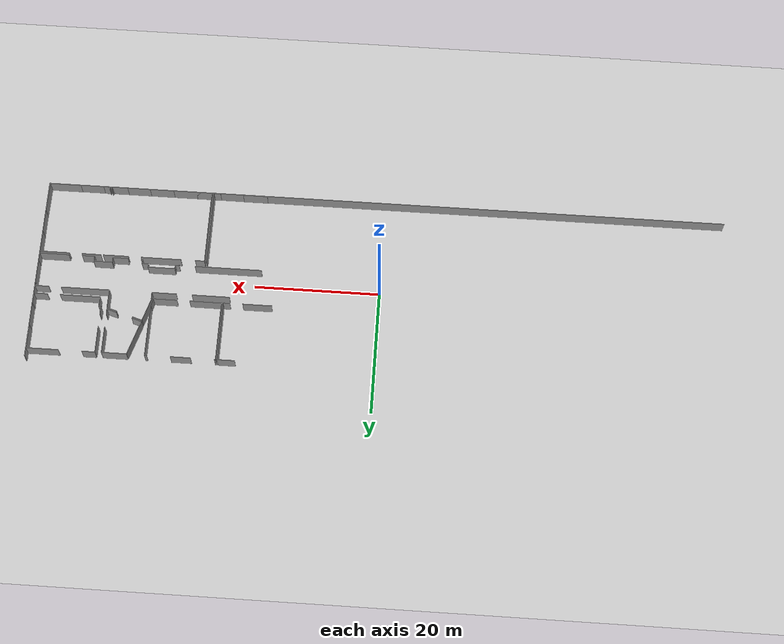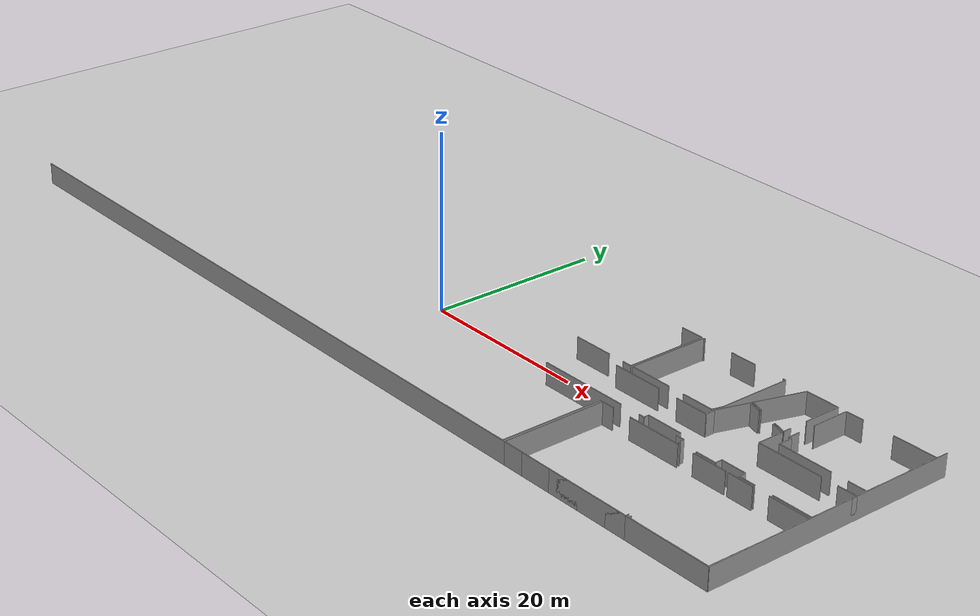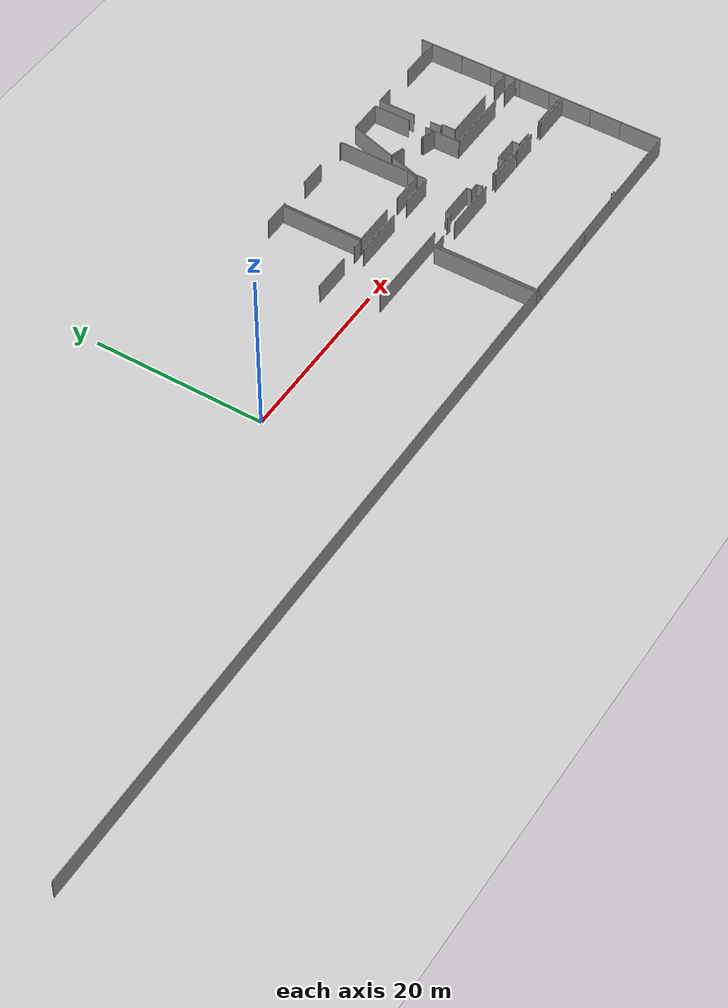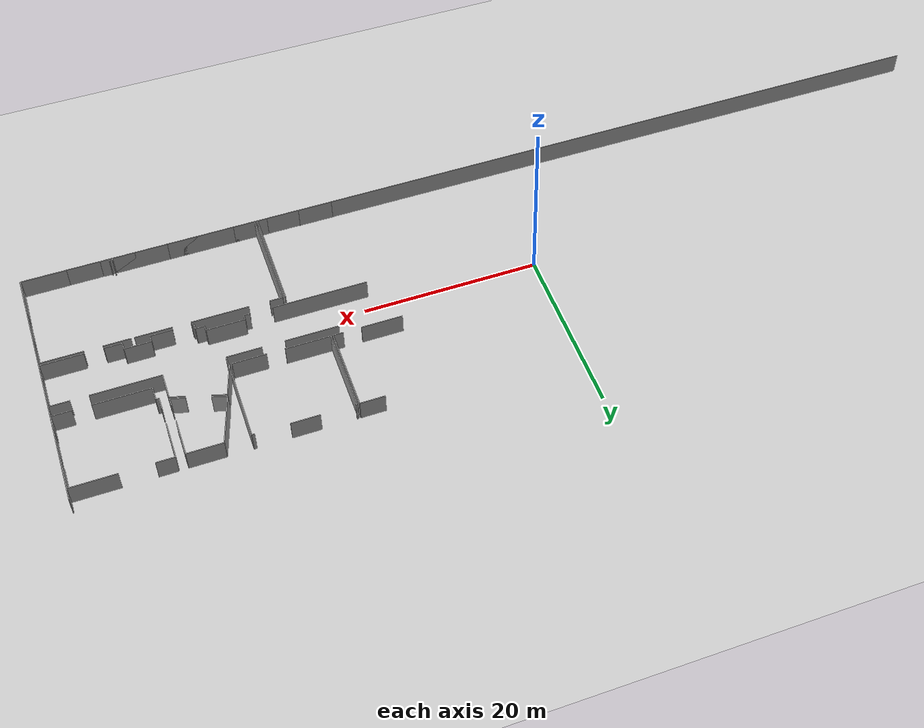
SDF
<sdf version="1.6">
 <world name="default">
  <model name="ground_plane">
   <static>1</static>
   <link name="link">
    <collision name="collision">
     <geometry><plane><normal>0 0 1</normal><size>100 100</size></plane></geometry>
     <surface><friction><ode><mu>100</mu><mu2>50</mu2></ode></friction></surface>
    </collision>
    <visual name="visual">
     <cast_shadows>0</cast_shadows>
     <geometry><plane><normal>0 0 1</normal><size>100 100</size></plane></geometry>
     <material>
      <script><uri>file://media/materials/scripts/gazebo.material</uri><name>Gazebo/Grey</name></script>
     </material>
    </visual>
   </link>
  </model>
  <model name="50056458">
   <static>1</static>
   <link name="Wall_161">
    <collision name="Wall_161_Collision">
     <geometry><box><size>4.71122328847 0.1 2.5</size></box></geometry>
     <pose>2.35561164424 0 1.25 0 0 0</pose>
    </collision>
    <visual name="Wall_161_Visual">
     <pose>2.35561164424 0 1.25 0 0 0</pose>
     <geometry><box><size>4.71122328847 0.1 2.5</size></box></geometry>
     <material>
      <script><uri>file://media/materials/scripts/gazebo.material</uri><name>Gazebo/Grey</name></script>
      <ambient>1 1 1 1</ambient>
     </material>
    </visual>
    <pose>109.543733643 -17.6653933783 0 0 0 3.14159265359</pose>
   </link>
   <link name="Wall_162">
    <collision name="Wall_162_Collision">
     <geometry><box><size>1.97379454039 0.1 2.5</size></box></geometry>
     <pose>0.986897270194 0 1.25 0 0 0</pose>
    </collision>
    <visual name="Wall_162_Visual">
     <pose>0.986897270194 0 1.25 0 0 0</pose>
     <geometry><box><size>1.97379454039 0.1 2.5</size></box></geometry>
     <material>
      <script><uri>file://media/materials/scripts/gazebo.material</uri><name>Gazebo/Grey</name></script>
      <ambient>1 1 1 1</ambient>
     </material>
    </visual>
    <pose>102.680511913 -17.6653933783 0 0 0 3.14159265359</pose>
   </link>
   <link name="Wall_163">
    <collision name="Wall_163_Collision">
     <geometry><box><size>0.839692716847 0.1 2.5</size></box></geometry>
     <pose>0.419846358424 0 1.25 0 0 0</pose>
    </collision>
    <visual name="Wall_163_Visual">
     <pose>0.419846358424 0 1.25 0 0 0</pose>
     <geometry><box><size>0.839692716847 0.1 2.5</size></box></geometry>
     <material>
      <script><uri>file://media/materials/scripts/gazebo.material</uri><name>Gazebo/Grey</name></script>
      <ambient>1 1 1 1</ambient>
     </material>
    </visual>
    <pose>100.706717372 -17.6653933783 0 0 0 1.57079632679</pose>
   </link>
   <link name="Wall_164">
    <collision name="Wall_164_Collision">
     <geometry><box><size>2.96136939196 0.1 2.5</size></box></geometry>
     <pose>1.48068469598 0 1.25 0 0 0</pose>
    </collision>
    <visual name="Wall_164_Visual">
     <pose>1.48068469598 0 1.25 0 0 0</pose>
     <geometry><box><size>2.96136939196 0.1 2.5</size></box></geometry>
     <material>
      <script><uri>file://media/materials/scripts/gazebo.material</uri><name>Gazebo/Grey</name></script>
      <ambient>1 1 1 1</ambient>
     </material>
    </visual>
    <pose>100.706717372 -16.8257006615 0 0 0 3.14159265359</pose>
   </link>
   <link name="Wall_165">
    <collision name="Wall_165_Collision">
     <geometry><box><size>0.806830020243 0.1 2.5</size></box></geometry>
     <pose>0.403415010121 0 1.25 0 0 0</pose>
    </collision>
    <visual name="Wall_165_Visual">
     <pose>0.403415010121 0 1.25 0 0 0</pose>
     <geometry><box><size>0.806830020243 0.1 2.5</size></box></geometry>
     <material>
      <script><uri>file://media/materials/scripts/gazebo.material</uri><name>Gazebo/Grey</name></script>
      <ambient>1 1 1 1</ambient>
     </material>
    </visual>
    <pose>97.7453479804 -16.8257006615 0 0 0 -1.57079632679</pose>
   </link>
   <link name="Wall_166">
    <collision name="Wall_166_Collision">
     <geometry><box><size>2.45928159435 0.1 2.5</size></box></geometry>
     <pose>1.22964079717 0 1.25 0 0 0</pose>
    </collision>
    <visual name="Wall_166_Visual">
     <pose>1.22964079717 0 1.25 0 0 0</pose>
     <geometry><box><size>2.45928159435 0.1 2.5</size></box></geometry>
     <material>
      <script><uri>file://media/materials/scripts/gazebo.material</uri><name>Gazebo/Grey</name></script>
      <ambient>1 1 1 1</ambient>
     </material>
    </visual>
    <pose>97.7453479804 -17.6325306817 0 0 0 3.14159265359</pose>
   </link>
   <link name="Wall_167">
    <collision name="Wall_167_Collision">
     <geometry><box><size>0.220891527692 0.1 2.5</size></box></geometry>
     <pose>0.110445763846 0 1.25 0 0 0</pose>
    </collision>
    <visual name="Wall_167_Visual">
     <pose>0.110445763846 0 1.25 0 0 0</pose>
     <geometry><box><size>0.220891527692 0.1 2.5</size></box></geometry>
     <material>
      <script><uri>file://media/materials/scripts/gazebo.material</uri><name>Gazebo/Grey</name></script>
      <ambient>1 1 1 1</ambient>
     </material>
    </visual>
    <pose>93.1796352918 -17.6325306817 0 0 0 3.14159265359</pose>
   </link>
   <link name="Wall_168">
    <collision name="Wall_168_Collision">
     <geometry><box><size>0.680122303438 0.1 2.5</size></box></geometry>
     <pose>0.340061151719 0 1.25 0 0 0</pose>
    </collision>
    <visual name="Wall_168_Visual">
     <pose>0.340061151719 0 1.25 0 0 0</pose>
     <geometry><box><size>0.680122303438 0.1 2.5</size></box></geometry>
     <material>
      <script><uri>file://media/materials/scripts/gazebo.material</uri><name>Gazebo/Grey</name></script>
      <ambient>1 1 1 1</ambient>
     </material>
    </visual>
    <pose>92.9587437641 -17.6325306817 0 0 0 1.57079632679</pose>
   </link>
   <link name="Wall_169">
    <collision name="Wall_169_Collision">
     <geometry><box><size>1.02416424572 0.1 2.5</size></box></geometry>
     <pose>0.512082122862 0 1.25 0 0 0</pose>
    </collision>
    <visual name="Wall_169_Visual">
     <pose>0.512082122862 0 1.25 0 0 0</pose>
     <geometry><box><size>1.02416424572 0.1 2.5</size></box></geometry>
     <material>
      <script><uri>file://media/materials/scripts/gazebo.material</uri><name>Gazebo/Grey</name></script>
      <ambient>1 1 1 1</ambient>
     </material>
    </visual>
    <pose>92.9587437641 -16.9524083783 0 0 0 3.14159265359</pose>
   </link>
   <link name="Wall_170">
    <collision name="Wall_170_Collision">
     <geometry><box><size>0.590173376134 0.1 2.5</size></box></geometry>
     <pose>0.295086688067 0 1.25 0 0 0</pose>
    </collision>
    <visual name="Wall_170_Visual">
     <pose>0.295086688067 0 1.25 0 0 0</pose>
     <geometry><box><size>0.590173376134 0.1 2.5</size></box></geometry>
     <material>
      <script><uri>file://media/materials/scripts/gazebo.material</uri><name>Gazebo/Grey</name></script>
      <ambient>1 1 1 1</ambient>
     </material>
    </visual>
    <pose>91.9345795184 -16.9524083783 0 0 0 1.57079632679</pose>
   </link>
   <link name="Wall_171">
    <collision name="Wall_171_Collision">
     <geometry><box><size>4.29925381351 0.1 2.5</size></box></geometry>
     <pose>2.14962690676 0 1.25 0 0 0</pose>
    </collision>
    <visual name="Wall_171_Visual">
     <pose>2.14962690676 0 1.25 0 0 0</pose>
     <geometry><box><size>4.29925381351 0.1 2.5</size></box></geometry>
     <material>
      <script><uri>file://media/materials/scripts/gazebo.material</uri><name>Gazebo/Grey</name></script>
      <ambient>1 1 1 1</ambient>
     </material>
    </visual>
    <pose>91.9345795184 -16.3622350022 0 0 0 3.14159265359</pose>
   </link>
   <link name="Wall_172">
    <collision name="Wall_172_Collision">
     <geometry><box><size>0.601522864136 0.1 2.5</size></box></geometry>
     <pose>0.300761432068 0 1.25 0 0 0</pose>
    </collision>
    <visual name="Wall_172_Visual">
     <pose>0.300761432068 0 1.25 0 0 0</pose>
     <geometry><box><size>0.601522864136 0.1 2.5</size></box></geometry>
     <material>
      <script><uri>file://media/materials/scripts/gazebo.material</uri><name>Gazebo/Grey</name></script>
      <ambient>1 1 1 1</ambient>
     </material>
    </visual>
    <pose>87.6353257049 -16.3622350022 0 0 0 -1.57079632679</pose>
   </link>
   <link name="Wall_173">
    <collision name="Wall_173_Collision">
     <geometry><box><size>0.668264629405 0.1 2.5</size></box></geometry>
     <pose>0.334132314703 0 1.25 0 0 0</pose>
    </collision>
    <visual name="Wall_173_Visual">
     <pose>0.334132314703 0 1.25 0 0 0</pose>
     <geometry><box><size>0.668264629405 0.1 2.5</size></box></geometry>
     <material>
      <script><uri>file://media/materials/scripts/gazebo.material</uri><name>Gazebo/Grey</name></script>
      <ambient>1 1 1 1</ambient>
     </material>
    </visual>
    <pose>87.6353257049 -16.9637578663 0 0 0 3.14159265359</pose>
   </link>
   <link name="Wall_174">
    <collision name="Wall_174_Collision">
     <geometry><box><size>10.6702126759 0.1 2.5</size></box></geometry>
     <pose>5.33510633793 0 1.25 0 0 0</pose>
    </collision>
    <visual name="Wall_174_Visual">
     <pose>5.33510633793 0 1.25 0 0 0</pose>
     <geometry><box><size>10.6702126759 0.1 2.5</size></box></geometry>
     <material>
      <script><uri>file://media/materials/scripts/gazebo.material</uri><name>Gazebo/Grey</name></script>
      <ambient>1 1 1 1</ambient>
     </material>
    </visual>
    <pose>84.4386661811 -16.9637578663 0 0 0 3.14159265359</pose>
   </link>
   <link name="Wall_183">
    <collision name="Wall_183_Collision">
     <geometry><box><size>5.98118017736 0.1 2.5</size></box></geometry>
     <pose>2.99059008868 0 1.25 0 0 0</pose>
    </collision>
    <visual name="Wall_183_Visual">
     <pose>2.99059008868 0 1.25 0 0 0</pose>
     <geometry><box><size>5.98118017736 0.1 2.5</size></box></geometry>
     <material>
      <script><uri>file://media/materials/scripts/gazebo.material</uri><name>Gazebo/Grey</name></script>
      <ambient>1 1 1 1</ambient>
     </material>
    </visual>
    <pose>78.4241151211 -12.0162280739 0 0 0 0.0</pose>
   </link>
   <link name="Wall_184">
    <collision name="Wall_184_Collision">
     <geometry><box><size>3.90337689617 0.1 2.5</size></box></geometry>
     <pose>1.95168844808 0 1.25 0 0 0</pose>
    </collision>
    <visual name="Wall_184_Visual">
     <pose>1.95168844808 0 1.25 0 0 0</pose>
     <geometry><box><size>3.90337689617 0.1 2.5</size></box></geometry>
     <material>
      <script><uri>file://media/materials/scripts/gazebo.material</uri><name>Gazebo/Grey</name></script>
      <ambient>1 1 1 1</ambient>
     </material>
    </visual>
    <pose>86.9047235891 -12.0162280739 0 0 0 0.0</pose>
   </link>
   <link name="Wall_185">
    <collision name="Wall_185_Collision">
     <geometry><box><size>1.05889029111 0.1 2.5</size></box></geometry>
     <pose>0.529445145553 0 1.25 0 0 0</pose>
    </collision>
    <visual name="Wall_185_Visual">
     <pose>0.529445145553 0 1.25 0 0 0</pose>
     <geometry><box><size>1.05889029111 0.1 2.5</size></box></geometry>
     <material>
      <script><uri>file://media/materials/scripts/gazebo.material</uri><name>Gazebo/Grey</name></script>
      <ambient>1 1 1 1</ambient>
     </material>
    </visual>
    <pose>90.8081004853 -12.0162280739 0 0 0 1.57079632679</pose>
   </link>
   <link name="Wall_186">
    <collision name="Wall_186_Collision">
     <geometry><box><size>0.0987574851567 0.1 2.5</size></box></geometry>
     <pose>0.0493787425784 0 1.25 0 0 0</pose>
    </collision>
    <visual name="Wall_186_Visual">
     <pose>0.0493787425784 0 1.25 0 0 0</pose>
     <geometry><box><size>0.0987574851567 0.1 2.5</size></box></geometry>
     <material>
      <script><uri>file://media/materials/scripts/gazebo.material</uri><name>Gazebo/Grey</name></script>
      <ambient>1 1 1 1</ambient>
     </material>
    </visual>
    <pose>90.8081004853 -10.9573377828 0 0 0 3.14159265359</pose>
   </link>
   <link name="Wall_187">
    <collision name="Wall_187_Collision">
     <geometry><box><size>3.95452072079 0.1 2.5</size></box></geometry>
     <pose>1.97726036039 0 1.25 0 0 0</pose>
    </collision>
    <visual name="Wall_187_Visual">
     <pose>1.97726036039 0 1.25 0 0 0</pose>
     <geometry><box><size>3.95452072079 0.1 2.5</size></box></geometry>
     <material>
      <script><uri>file://media/materials/scripts/gazebo.material</uri><name>Gazebo/Grey</name></script>
      <ambient>1 1 1 1</ambient>
     </material>
    </visual>
    <pose>90.7093430002 -10.9573377828 0 0 0 1.27352564434</pose>
   </link>
   <link name="Wall_188">
    <collision name="Wall_188_Collision">
     <geometry><box><size>1.63315909425 0.1 2.5</size></box></geometry>
     <pose>0.816579547124 0 1.25 0 0 0</pose>
    </collision>
    <visual name="Wall_188_Visual">
     <pose>0.816579547124 0 1.25 0 0 0</pose>
     <geometry><box><size>1.63315909425 0.1 2.5</size></box></geometry>
     <material>
      <script><uri>file://media/materials/scripts/gazebo.material</uri><name>Gazebo/Grey</name></script>
      <ambient>1 1 1 1</ambient>
     </material>
    </visual>
    <pose>91.8676683578 -7.17626432449 0 0 0 -0.300527403711</pose>
   </link>
   <link name="Wall_189">
    <collision name="Wall_189_Collision">
     <geometry><box><size>1.69234562505 0.1 2.5</size></box></geometry>
     <pose>0.846172812523 0 1.25 0 0 0</pose>
    </collision>
    <visual name="Wall_189_Visual">
     <pose>0.846172812523 0 1.25 0 0 0</pose>
     <geometry><box><size>1.69234562505 0.1 2.5</size></box></geometry>
     <material>
      <script><uri>file://media/materials/scripts/gazebo.material</uri><name>Gazebo/Grey</name></script>
      <ambient>1 1 1 1</ambient>
     </material>
    </visual>
    <pose>95.998035014 -8.45519916657 0 0 0 -0.278340906324</pose>
   </link>
   <link name="Wall_190">
    <collision name="Wall_190_Collision">
     <geometry><box><size>3.06486994673 0.1 2.5</size></box></geometry>
     <pose>1.53243497336 0 1.25 0 0 0</pose>
    </collision>
    <visual name="Wall_190_Visual">
     <pose>1.53243497336 0 1.25 0 0 0</pose>
     <geometry><box><size>3.06486994673 0.1 2.5</size></box></geometry>
     <material>
      <script><uri>file://media/materials/scripts/gazebo.material</uri><name>Gazebo/Grey</name></script>
      <ambient>1 1 1 1</ambient>
     </material>
    </visual>
    <pose>97.625246682 -8.92018938399 0 0 0 -1.57079632679</pose>
   </link>
   <link name="Wall_191">
    <collision name="Wall_191_Collision">
     <geometry><box><size>7.71951519053 0.1 2.5</size></box></geometry>
     <pose>3.85975759526 0 1.25 0 0 0</pose>
    </collision>
    <visual name="Wall_191_Visual">
     <pose>3.85975759526 0 1.25 0 0 0</pose>
     <geometry><box><size>7.71951519053 0.1 2.5</size></box></geometry>
     <material>
      <script><uri>file://media/materials/scripts/gazebo.material</uri><name>Gazebo/Grey</name></script>
      <ambient>1 1 1 1</ambient>
     </material>
    </visual>
    <pose>97.625246682 -11.9850593307 0 0 0 0.0</pose>
   </link>
   <link name="Wall_192">
    <collision name="Wall_192_Collision">
     <geometry><box><size>2.2538050429 0.1 2.5</size></box></geometry>
     <pose>1.12690252145 0 1.25 0 0 0</pose>
    </collision>
    <visual name="Wall_192_Visual">
     <pose>1.12690252145 0 1.25 0 0 0</pose>
     <geometry><box><size>2.2538050429 0.1 2.5</size></box></geometry>
     <material>
      <script><uri>file://media/materials/scripts/gazebo.material</uri><name>Gazebo/Grey</name></script>
      <ambient>1 1 1 1</ambient>
     </material>
    </visual>
    <pose>107.305682367 -11.9850593307 0 0 0 0.0</pose>
   </link>
   <link name="Wall_193">
    <collision name="Wall_193_Collision">
     <geometry><box><size>0.651494490416 0.1 2.5</size></box></geometry>
     <pose>0.325747245208 0 1.25 0 0 0</pose>
    </collision>
    <visual name="Wall_193_Visual">
     <pose>0.325747245208 0 1.25 0 0 0</pose>
     <geometry><box><size>0.651494490416 0.1 2.5</size></box></geometry>
     <material>
      <script><uri>file://media/materials/scripts/gazebo.material</uri><name>Gazebo/Grey</name></script>
      <ambient>1 1 1 1</ambient>
     </material>
    </visual>
    <pose>109.55948741 -11.9850593307 0 0 0 -1.57079632679</pose>
   </link>
   <link name="Wall_194">
    <collision name="Wall_194_Collision">
     <geometry><box><size>1.30223729791 0.1 2.5</size></box></geometry>
     <pose>0.651118648953 0 1.25 0 0 0</pose>
    </collision>
    <visual name="Wall_194_Visual">
     <pose>0.651118648953 0 1.25 0 0 0</pose>
     <geometry><box><size>1.30223729791 0.1 2.5</size></box></geometry>
     <material>
      <script><uri>file://media/materials/scripts/gazebo.material</uri><name>Gazebo/Grey</name></script>
      <ambient>1 1 1 1</ambient>
     </material>
    </visual>
    <pose>109.55948741 -16.3632513742 0 0 0 -1.58289408443</pose>
   </link>
   <link name="Wall_235">
    <collision name="Wall_235_Collision">
     <geometry><box><size>1.12021140539 0.1 2.5</size></box></geometry>
     <pose>0.560105702694 0 1.25 0 0 0</pose>
    </collision>
    <visual name="Wall_235_Visual">
     <pose>0.560105702694 0 1.25 0 0 0</pose>
     <geometry><box><size>1.12021140539 0.1 2.5</size></box></geometry>
     <material>
      <script><uri>file://media/materials/scripts/gazebo.material</uri><name>Gazebo/Grey</name></script>
      <ambient>1 1 1 1</ambient>
     </material>
    </visual>
    <pose>79.3735760204 -10.9935883863 0 0 0 3.14159265359</pose>
   </link>
   <link name="Wall_236">
    <collision name="Wall_236_Collision">
     <geometry><box><size>4.63330143054 0.1 2.5</size></box></geometry>
     <pose>2.31665071527 0 1.25 0 0 0</pose>
    </collision>
    <visual name="Wall_236_Visual">
     <pose>2.31665071527 0 1.25 0 0 0</pose>
     <geometry><box><size>4.63330143054 0.1 2.5</size></box></geometry>
     <material>
      <script><uri>file://media/materials/scripts/gazebo.material</uri><name>Gazebo/Grey</name></script>
      <ambient>1 1 1 1</ambient>
     </material>
    </visual>
    <pose>76.229937239 -10.9935883863 0 0 0 3.14159265359</pose>
   </link>
   <link name="Wall_239">
    <collision name="Wall_239_Collision">
     <geometry><box><size>2.78452065353 0.1 2.5</size></box></geometry>
     <pose>1.39226032676 0 1.25 0 0 0</pose>
    </collision>
    <visual name="Wall_239_Visual">
     <pose>1.39226032676 0 1.25 0 0 0</pose>
     <geometry><box><size>2.78452065353 0.1 2.5</size></box></geometry>
     <material>
      <script><uri>file://media/materials/scripts/gazebo.material</uri><name>Gazebo/Grey</name></script>
      <ambient>1 1 1 1</ambient>
     </material>
    </visual>
    <pose>76.5863450414 -1.38158842013 0 0 0 0.0</pose>
   </link>
   <link name="Wall_240">
    <collision name="Wall_240_Collision">
     <geometry><box><size>9.61200034824 0.1 2.5</size></box></geometry>
     <pose>4.80600017412 0 1.25 0 0 0</pose>
    </collision>
    <visual name="Wall_240_Visual">
     <pose>4.80600017412 0 1.25 0 0 0</pose>
     <geometry><box><size>9.61200034824 0.1 2.5</size></box></geometry>
     <material>
      <script><uri>file://media/materials/scripts/gazebo.material</uri><name>Gazebo/Grey</name></script>
      <ambient>1 1 1 1</ambient>
     </material>
    </visual>
    <pose>79.3708656949 -1.38158842013 0 0 0 -1.5705143537</pose>
   </link>
   <link name="Wall_241">
    <collision name="Wall_241_Collision">
     <geometry><box><size>3.80665215513 0.1 2.5</size></box></geometry>
     <pose>1.90332607757 0 1.25 0 0 0</pose>
    </collision>
    <visual name="Wall_241_Visual">
     <pose>1.90332607757 0 1.25 0 0 0</pose>
     <geometry><box><size>3.80665215513 0.1 2.5</size></box></geometry>
     <material>
      <script><uri>file://media/materials/scripts/gazebo.material</uri><name>Gazebo/Grey</name></script>
      <ambient>1 1 1 1</ambient>
     </material>
    </visual>
    <pose>90.4840471935 -10.9720751777 0 0 0 3.14159265359</pose>
   </link>
   <link name="Wall_242">
    <collision name="Wall_242_Collision">
     <geometry><box><size>5.06712290479 0.1 2.5</size></box></geometry>
     <pose>2.5335614524 0 1.25 0 0 0</pose>
    </collision>
    <visual name="Wall_242_Visual">
     <pose>2.5335614524 0 1.25 0 0 0</pose>
     <geometry><box><size>5.06712290479 0.1 2.5</size></box></geometry>
     <material>
      <script><uri>file://media/materials/scripts/gazebo.material</uri><name>Gazebo/Grey</name></script>
      <ambient>1 1 1 1</ambient>
     </material>
    </visual>
    <pose>84.680393336 -10.9720751777 0 0 0 3.14159265359</pose>
   </link>
   <link name="Wall_243">
    <collision name="Wall_243_Collision">
     <geometry><box><size>9.6009892688 0.1 2.5</size></box></geometry>
     <pose>4.8004946344 0 1.25 0 0 0</pose>
    </collision>
    <visual name="Wall_243_Visual">
     <pose>4.8004946344 0 1.25 0 0 0</pose>
     <geometry><box><size>9.6009892688 0.1 2.5</size></box></geometry>
     <material>
      <script><uri>file://media/materials/scripts/gazebo.material</uri><name>Gazebo/Grey</name></script>
      <ambient>1 1 1 1</ambient>
     </material>
    </visual>
    <pose>79.6132704312 -10.9720751777 0 0 0 1.57079632679</pose>
   </link>
   <link name="Wall_244">
    <collision name="Wall_244_Collision">
     <geometry><box><size>0.191586133297 0.1 2.5</size></box></geometry>
     <pose>0.0957930666486 0 1.25 0 0 0</pose>
    </collision>
    <visual name="Wall_244_Visual">
     <pose>0.0957930666486 0 1.25 0 0 0</pose>
     <geometry><box><size>0.191586133297 0.1 2.5</size></box></geometry>
     <material>
      <script><uri>file://media/materials/scripts/gazebo.material</uri><name>Gazebo/Grey</name></script>
      <ambient>1 1 1 1</ambient>
     </material>
    </visual>
    <pose>79.6132704312 -1.37108590885 0 0 0 0.0</pose>
   </link>
   <link name="Wall_245">
    <collision name="Wall_245_Collision">
     <geometry><box><size>3.20089440741 0.1 2.5</size></box></geometry>
     <pose>1.60044720371 0 1.25 0 0 0</pose>
    </collision>
    <visual name="Wall_245_Visual">
     <pose>1.60044720371 0 1.25 0 0 0</pose>
     <geometry><box><size>3.20089440741 0.1 2.5</size></box></geometry>
     <material>
      <script><uri>file://media/materials/scripts/gazebo.material</uri><name>Gazebo/Grey</name></script>
      <ambient>1 1 1 1</ambient>
     </material>
    </visual>
    <pose>83.5476466752 -1.37108590885 0 0 0 0.0</pose>
   </link>
   <link name="Wall_246">
    <collision name="Wall_246_Collision">
     <geometry><box><size>0.322189942998 0.1 2.5</size></box></geometry>
     <pose>0.161094971499 0 1.25 0 0 0</pose>
    </collision>
    <visual name="Wall_246_Visual">
     <pose>0.161094971499 0 1.25 0 0 0</pose>
     <geometry><box><size>0.322189942998 0.1 2.5</size></box></geometry>
     <material>
      <script><uri>file://media/materials/scripts/gazebo.material</uri><name>Gazebo/Grey</name></script>
      <ambient>1 1 1 1</ambient>
     </material>
    </visual>
    <pose>90.468971008 -1.37108590885 0 0 0 0.0</pose>
   </link>
   <link name="Wall_247">
    <collision name="Wall_247_Collision">
     <geometry><box><size>8.34898828631 0.1 2.5</size></box></geometry>
     <pose>4.17449414316 0 1.25 0 0 0</pose>
    </collision>
    <visual name="Wall_247_Visual">
     <pose>4.17449414316 0 1.25 0 0 0</pose>
     <geometry><box><size>8.34898828631 0.1 2.5</size></box></geometry>
     <material>
      <script><uri>file://media/materials/scripts/gazebo.material</uri><name>Gazebo/Grey</name></script>
      <ambient>1 1 1 1</ambient>
     </material>
    </visual>
    <pose>90.791160951 -1.37108590885 0 0 0 -1.57079632679</pose>
   </link>
   <link name="Wall_248">
    <collision name="Wall_248_Collision">
     <geometry><box><size>1.28911803966 0.1 2.5</size></box></geometry>
     <pose>0.644559019829 0 1.25 0 0 0</pose>
    </collision>
    <visual name="Wall_248_Visual">
     <pose>0.644559019829 0 1.25 0 0 0</pose>
     <geometry><box><size>1.28911803966 0.1 2.5</size></box></geometry>
     <material>
      <script><uri>file://media/materials/scripts/gazebo.material</uri><name>Gazebo/Grey</name></script>
      <ambient>1 1 1 1</ambient>
     </material>
    </visual>
    <pose>90.791160951 -9.72007419516 0 0 0 -1.81134502241</pose>
   </link>
   <link name="Wall_249">
    <collision name="Wall_249_Collision">
     <geometry><box><size>0.935570481167 0.1 2.5</size></box></geometry>
     <pose>0.467785240584 0 1.25 0 0 0</pose>
    </collision>
    <visual name="Wall_249_Visual">
     <pose>0.467785240584 0 1.25 0 0 0</pose>
     <geometry><box><size>0.935570481167 0.1 2.5</size></box></geometry>
     <material>
      <script><uri>file://media/materials/scripts/gazebo.material</uri><name>Gazebo/Grey</name></script>
      <ambient>1 1 1 1</ambient>
     </material>
    </visual>
    <pose>97.6039028687 -8.73266873894 0 0 0 1.57079632679</pose>
   </link>
   <link name="Wall_250">
    <collision name="Wall_250_Collision">
     <geometry><box><size>4.32127520814 0.1 2.5</size></box></geometry>
     <pose>2.16063760407 0 1.25 0 0 0</pose>
    </collision>
    <visual name="Wall_250_Visual">
     <pose>2.16063760407 0 1.25 0 0 0</pose>
     <geometry><box><size>4.32127520814 0.1 2.5</size></box></geometry>
     <material>
      <script><uri>file://media/materials/scripts/gazebo.material</uri><name>Gazebo/Grey</name></script>
      <ambient>1 1 1 1</ambient>
     </material>
    </visual>
    <pose>97.6039028687 -5.70472697706 0 0 0 1.57079632679</pose>
   </link>
   <link name="Wall_251">
    <collision name="Wall_251_Collision">
     <geometry><box><size>3.97011866144 0.1 2.5</size></box></geometry>
     <pose>1.98505933072 0 1.25 0 0 0</pose>
    </collision>
    <visual name="Wall_251_Visual">
     <pose>1.98505933072 0 1.25 0 0 0</pose>
     <geometry><box><size>3.97011866144 0.1 2.5</size></box></geometry>
     <material>
      <script><uri>file://media/materials/scripts/gazebo.material</uri><name>Gazebo/Grey</name></script>
      <ambient>1 1 1 1</ambient>
     </material>
    </visual>
    <pose>97.6039028687 -1.38345176891 0 0 0 3.14159265359</pose>
   </link>
   <link name="Wall_252">
    <collision name="Wall_252_Collision">
     <geometry><box><size>5.86161062156 0.1 2.5</size></box></geometry>
     <pose>2.93080531078 0 1.25 0 0 0</pose>
    </collision>
    <visual name="Wall_252_Visual">
     <pose>2.93080531078 0 1.25 0 0 0</pose>
     <geometry><box><size>5.86161062156 0.1 2.5</size></box></geometry>
     <material>
      <script><uri>file://media/materials/scripts/gazebo.material</uri><name>Gazebo/Grey</name></script>
      <ambient>1 1 1 1</ambient>
     </material>
    </visual>
    <pose>93.6337842073 -1.38345176891 0 0 0 -1.87085904189</pose>
   </link>
   <link name="Wall_253">
    <collision name="Wall_253_Collision">
     <geometry><box><size>1.66984837027 0.1 2.5</size></box></geometry>
     <pose>0.834924185135 0 1.25 0 0 0</pose>
    </collision>
    <visual name="Wall_253_Visual">
     <pose>0.834924185135 0 1.25 0 0 0</pose>
     <geometry><box><size>1.66984837027 0.1 2.5</size></box></geometry>
     <material>
      <script><uri>file://media/materials/scripts/gazebo.material</uri><name>Gazebo/Grey</name></script>
      <ambient>1 1 1 1</ambient>
     </material>
    </visual>
    <pose>91.9012086358 -6.98315363311 0 0 0 -0.294255158677</pose>
   </link>
   <link name="Wall_254">
    <collision name="Wall_254_Collision">
     <geometry><box><size>1.63992682604 0.1 2.5</size></box></geometry>
     <pose>0.819963413021 0 1.25 0 0 0</pose>
    </collision>
    <visual name="Wall_254_Visual">
     <pose>0.819963413021 0 1.25 0 0 0</pose>
     <geometry><box><size>1.63992682604 0.1 2.5</size></box></geometry>
     <material>
      <script><uri>file://media/materials/scripts/gazebo.material</uri><name>Gazebo/Grey</name></script>
      <ambient>1 1 1 1</ambient>
     </material>
    </visual>
    <pose>96.032083478 -8.26496819602 0 0 0 -0.289210896777</pose>
   </link>
   <link name="Wall_255">
    <collision name="Wall_255_Collision">
     <geometry><box><size>2.17876290581 0.1 2.5</size></box></geometry>
     <pose>1.0893814529 0 1.25 0 0 0</pose>
    </collision>
    <visual name="Wall_255_Visual">
     <pose>1.0893814529 0 1.25 0 0 0</pose>
     <geometry><box><size>2.17876290581 0.1 2.5</size></box></geometry>
     <material>
      <script><uri>file://media/materials/scripts/gazebo.material</uri><name>Gazebo/Grey</name></script>
      <ambient>1 1 1 1</ambient>
     </material>
    </visual>
    <pose>109.53001262 -10.6922340705 0 0 0 3.14159265359</pose>
   </link>
   <link name="Wall_256">
    <collision name="Wall_256_Collision">
     <geometry><box><size>6.37282221112 0.1 2.5</size></box></geometry>
     <pose>3.18641110556 0 1.25 0 0 0</pose>
    </collision>
    <visual name="Wall_256_Visual">
     <pose>3.18641110556 0 1.25 0 0 0</pose>
     <geometry><box><size>6.37282221112 0.1 2.5</size></box></geometry>
     <material>
      <script><uri>file://media/materials/scripts/gazebo.material</uri><name>Gazebo/Grey</name></script>
      <ambient>1 1 1 1</ambient>
     </material>
    </visual>
    <pose>105.324942617 -10.6922340705 0 0 0 3.14159265359</pose>
   </link>
   <link name="Wall_257">
    <collision name="Wall_257_Collision">
     <geometry><box><size>1.57842580907 0.1 2.5</size></box></geometry>
     <pose>0.789212904537 0 1.25 0 0 0</pose>
    </collision>
    <visual name="Wall_257_Visual">
     <pose>0.789212904537 0 1.25 0 0 0</pose>
     <geometry><box><size>1.57842580907 0.1 2.5</size></box></geometry>
     <material>
      <script><uri>file://media/materials/scripts/gazebo.material</uri><name>Gazebo/Grey</name></script>
      <ambient>1 1 1 1</ambient>
     </material>
    </visual>
    <pose>98.9521204062 -10.6922340705 0 0 0 1.57079632679</pose>
   </link>
   <link name="Wall_258">
    <collision name="Wall_258_Collision">
     <geometry><box><size>0.329304547418 0.1 2.5</size></box></geometry>
     <pose>0.164652273709 0 1.25 0 0 0</pose>
    </collision>
    <visual name="Wall_258_Visual">
     <pose>0.164652273709 0 1.25 0 0 0</pose>
     <geometry><box><size>0.329304547418 0.1 2.5</size></box></geometry>
     <material>
      <script><uri>file://media/materials/scripts/gazebo.material</uri><name>Gazebo/Grey</name></script>
      <ambient>1 1 1 1</ambient>
     </material>
    </visual>
    <pose>98.9521204062 -9.11380826141 0 0 0 3.14159265359</pose>
   </link>
   <link name="Wall_259">
    <collision name="Wall_259_Collision">
     <geometry><box><size>1.35160544437 0.1 2.5</size></box></geometry>
     <pose>0.675802722183 0 1.25 0 0 0</pose>
    </collision>
    <visual name="Wall_259_Visual">
     <pose>0.675802722183 0 1.25 0 0 0</pose>
     <geometry><box><size>1.35160544437 0.1 2.5</size></box></geometry>
     <material>
      <script><uri>file://media/materials/scripts/gazebo.material</uri><name>Gazebo/Grey</name></script>
      <ambient>1 1 1 1</ambient>
     </material>
    </visual>
    <pose>98.6228158588 -9.11380826141 0 0 0 1.57079632679</pose>
   </link>
   <link name="Wall_260">
    <collision name="Wall_260_Collision">
     <geometry><box><size>4.35024181185 0.1 2.5</size></box></geometry>
     <pose>2.17512090593 0 1.25 0 0 0</pose>
    </collision>
    <visual name="Wall_260_Visual">
     <pose>2.17512090593 0 1.25 0 0 0</pose>
     <geometry><box><size>4.35024181185 0.1 2.5</size></box></geometry>
     <material>
      <script><uri>file://media/materials/scripts/gazebo.material</uri><name>Gazebo/Grey</name></script>
      <ambient>1 1 1 1</ambient>
     </material>
    </visual>
    <pose>98.6228158588 -5.71167218613 0 0 0 1.57079632679</pose>
   </link>
   <link name="Wall_261">
    <collision name="Wall_261_Collision">
     <geometry><box><size>2.06967230471 0.1 2.5</size></box></geometry>
     <pose>1.03483615235 0 1.25 0 0 0</pose>
    </collision>
    <visual name="Wall_261_Visual">
     <pose>1.03483615235 0 1.25 0 0 0</pose>
     <geometry><box><size>2.06967230471 0.1 2.5</size></box></geometry>
     <material>
      <script><uri>file://media/materials/scripts/gazebo.material</uri><name>Gazebo/Grey</name></script>
      <ambient>1 1 1 1</ambient>
     </material>
    </visual>
    <pose>98.6228158588 -1.36143037428 0 0 0 0.0</pose>
   </link>
   <link name="Wall_262">
    <collision name="Wall_262_Collision">
     <geometry><box><size>5.10422048498 0.1 2.5</size></box></geometry>
     <pose>2.55211024249 0 1.25 0 0 0</pose>
    </collision>
    <visual name="Wall_262_Visual">
     <pose>2.55211024249 0 1.25 0 0 0</pose>
     <geometry><box><size>5.10422048498 0.1 2.5</size></box></geometry>
     <material>
      <script><uri>file://media/materials/scripts/gazebo.material</uri><name>Gazebo/Grey</name></script>
      <ambient>1 1 1 1</ambient>
     </material>
    </visual>
    <pose>104.404787112 -1.36143037428 0 0 0 0.0</pose>
   </link>
   <link name="Wall_263">
    <collision name="Wall_263_Collision">
     <geometry><box><size>3.88067792016 0.1 2.5</size></box></geometry>
     <pose>1.94033896008 0 1.25 0 0 0</pose>
    </collision>
    <visual name="Wall_263_Visual">
     <pose>1.94033896008 0 1.25 0 0 0</pose>
     <geometry><box><size>3.88067792016 0.1 2.5</size></box></geometry>
     <material>
      <script><uri>file://media/materials/scripts/gazebo.material</uri><name>Gazebo/Grey</name></script>
      <ambient>1 1 1 1</ambient>
     </material>
    </visual>
    <pose>109.509007597 -1.36143037428 0 0 0 -1.57079632679</pose>
   </link>
   <link name="Wall_264">
    <collision name="Wall_264_Collision">
     <geometry><box><size>1.7677652054 0.1 2.5</size></box></geometry>
     <pose>0.883882602701 0 1.25 0 0 0</pose>
    </collision>
    <visual name="Wall_264_Visual">
     <pose>0.883882602701 0 1.25 0 0 0</pose>
     <geometry><box><size>1.7677652054 0.1 2.5</size></box></geometry>
     <material>
      <script><uri>file://media/materials/scripts/gazebo.material</uri><name>Gazebo/Grey</name></script>
      <ambient>1 1 1 1</ambient>
     </material>
    </visual>
    <pose>109.509007597 -8.92459366292 0 0 0 -1.55891380031</pose>
   </link>
   <link name="Wall_265">
    <collision name="Wall_265_Collision">
     <geometry><box><size>5.02324951087 0.1 2.5</size></box></geometry>
     <pose>2.51162475544 0 1.25 0 0 0</pose>
    </collision>
    <visual name="Wall_265_Visual">
     <pose>2.51162475544 0 1.25 0 0 0</pose>
     <geometry><box><size>5.02324951087 0.1 2.5</size></box></geometry>
     <material>
      <script><uri>file://media/materials/scripts/gazebo.material</uri><name>Gazebo/Grey</name></script>
      <ambient>1 1 1 1</ambient>
     </material>
    </visual>
    <pose>109.476991877 -30.0287125107 0 0 0 3.14159265359</pose>
   </link>
   <link name="Wall_266">
    <collision name="Wall_266_Collision">
     <geometry><box><size>1.02467243175 0.1 2.5</size></box></geometry>
     <pose>0.512336215877 0 1.25 0 0 0</pose>
    </collision>
    <visual name="Wall_266_Visual">
     <pose>0.512336215877 0 1.25 0 0 0</pose>
     <geometry><box><size>1.02467243175 0.1 2.5</size></box></geometry>
     <material>
      <script><uri>file://media/materials/scripts/gazebo.material</uri><name>Gazebo/Grey</name></script>
      <ambient>1 1 1 1</ambient>
     </material>
    </visual>
    <pose>100.722471139 -30.0287125107 0 0 0 3.14159265359</pose>
   </link>
   <link name="Wall_267">
    <collision name="Wall_267_Collision">
     <geometry><box><size>0.30084612974 0.1 2.5</size></box></geometry>
     <pose>0.15042306487 0 1.25 0 0 0</pose>
    </collision>
    <visual name="Wall_267_Visual">
     <pose>0.15042306487 0 1.25 0 0 0</pose>
     <geometry><box><size>0.30084612974 0.1 2.5</size></box></geometry>
     <material>
      <script><uri>file://media/materials/scripts/gazebo.material</uri><name>Gazebo/Grey</name></script>
      <ambient>1 1 1 1</ambient>
     </material>
    </visual>
    <pose>99.6977987075 -30.0287125107 0 0 0 1.57079632679</pose>
   </link>
   <link name="Wall_268">
    <collision name="Wall_268_Collision">
     <geometry><box><size>3.0452200869 0.1 2.5</size></box></geometry>
     <pose>1.52261004345 0 1.25 0 0 0</pose>
    </collision>
    <visual name="Wall_268_Visual">
     <pose>1.52261004345 0 1.25 0 0 0</pose>
     <geometry><box><size>3.0452200869 0.1 2.5</size></box></geometry>
     <material>
      <script><uri>file://media/materials/scripts/gazebo.material</uri><name>Gazebo/Grey</name></script>
      <ambient>1 1 1 1</ambient>
     </material>
    </visual>
    <pose>99.6977987075 -17.9784359728 0 0 0 0.0</pose>
   </link>
   <link name="Wall_269">
    <collision name="Wall_269_Collision">
     <geometry><box><size>4.78931454174 0.1 2.5</size></box></geometry>
     <pose>2.39465727087 0 1.25 0 0 0</pose>
    </collision>
    <visual name="Wall_269_Visual">
     <pose>2.39465727087 0 1.25 0 0 0</pose>
     <geometry><box><size>4.78931454174 0.1 2.5</size></box></geometry>
     <material>
      <script><uri>file://media/materials/scripts/gazebo.material</uri><name>Gazebo/Grey</name></script>
      <ambient>1 1 1 1</ambient>
     </material>
    </visual>
    <pose>104.754419101 -17.9784359728 0 0 0 0.0</pose>
   </link>
   <link name="Wall_270">
    <collision name="Wall_270_Collision">
     <geometry><box><size>3.4968280722 0.1 2.5</size></box></geometry>
     <pose>1.7484140361 0 1.25 0 0 0</pose>
    </collision>
    <visual name="Wall_270_Visual">
     <pose>1.7484140361 0 1.25 0 0 0</pose>
     <geometry><box><size>3.4968280722 0.1 2.5</size></box></geometry>
     <material>
      <script><uri>file://media/materials/scripts/gazebo.material</uri><name>Gazebo/Grey</name></script>
      <ambient>1 1 1 1</ambient>
     </material>
    </visual>
    <pose>109.543733643 -17.9784359728 0 0 0 -1.57079632679</pose>
   </link>
   <link name="Wall_271">
    <collision name="Wall_271_Collision">
     <geometry><box><size>4.83940762737 0.1 2.5</size></box></geometry>
     <pose>2.41970381369 0 1.25 0 0 0</pose>
    </collision>
    <visual name="Wall_271_Visual">
     <pose>2.41970381369 0 1.25 0 0 0</pose>
     <geometry><box><size>4.83940762737 0.1 2.5</size></box></geometry>
     <material>
      <script><uri>file://media/materials/scripts/gazebo.material</uri><name>Gazebo/Grey</name></script>
      <ambient>1 1 1 1</ambient>
     </material>
    </visual>
    <pose>109.543733643 -25.1897651334 0 0 0 -1.58458807287</pose>
   </link>
   <link name="Wall_272">
    <collision name="Wall_272_Collision">
     <geometry><box><size>2.52839489442 0.1 2.5</size></box></geometry>
     <pose>1.26419744721 0 1.25 0 0 0</pose>
    </collision>
    <visual name="Wall_272_Visual">
     <pose>1.26419744721 0 1.25 0 0 0</pose>
     <geometry><box><size>2.52839489442 0.1 2.5</size></box></geometry>
     <material>
      <script><uri>file://media/materials/scripts/gazebo.material</uri><name>Gazebo/Grey</name></script>
      <ambient>1 1 1 1</ambient>
     </material>
    </visual>
    <pose>99.3413909052 -30.0509033007 0 0 0 3.14159265359</pose>
   </link>
   <link name="Wall_273">
    <collision name="Wall_273_Collision">
     <geometry><box><size>3.85374406058 0.1 2.5</size></box></geometry>
     <pose>1.92687203029 0 1.25 0 0 0</pose>
    </collision>
    <visual name="Wall_273_Visual">
     <pose>1.92687203029 0 1.25 0 0 0</pose>
     <geometry><box><size>3.85374406058 0.1 2.5</size></box></geometry>
     <material>
      <script><uri>file://media/materials/scripts/gazebo.material</uri><name>Gazebo/Grey</name></script>
      <ambient>1 1 1 1</ambient>
     </material>
    </visual>
    <pose>93.126445154 -30.0509033007 0 0 0 3.14159265359</pose>
   </link>
   <link name="Wall_274">
    <collision name="Wall_274_Collision">
     <geometry><box><size>2.49282187233 0.1 2.5</size></box></geometry>
     <pose>1.24641093616 0 1.25 0 0 0</pose>
    </collision>
    <visual name="Wall_274_Visual">
     <pose>1.24641093616 0 1.25 0 0 0</pose>
     <geometry><box><size>2.49282187233 0.1 2.5</size></box></geometry>
     <material>
      <script><uri>file://media/materials/scripts/gazebo.material</uri><name>Gazebo/Grey</name></script>
      <ambient>1 1 1 1</ambient>
     </material>
    </visual>
    <pose>85.5299109827 -30.0509033007 0 0 0 3.14159265359</pose>
   </link>
   <link name="Wall_275">
    <collision name="Wall_275_Collision">
     <geometry><box><size>12.0755164441 0.1 2.5</size></box></geometry>
     <pose>6.03775822203 0 1.25 0 0 0</pose>
    </collision>
    <visual name="Wall_275_Visual">
     <pose>6.03775822203 0 1.25 0 0 0</pose>
     <geometry><box><size>12.0755164441 0.1 2.5</size></box></geometry>
     <material>
      <script><uri>file://media/materials/scripts/gazebo.material</uri><name>Gazebo/Grey</name></script>
      <ambient>1 1 1 1</ambient>
     </material>
    </visual>
    <pose>83.0370891104 -30.0509033007 0 0 0 1.57079632679</pose>
   </link>
   <link name="Wall_276">
    <collision name="Wall_276_Collision">
     <geometry><box><size>1.47390888224 0.1 2.5</size></box></geometry>
     <pose>0.736954441122 0 1.25 0 0 0</pose>
    </collision>
    <visual name="Wall_276_Visual">
     <pose>0.736954441122 0 1.25 0 0 0</pose>
     <geometry><box><size>1.47390888224 0.1 2.5</size></box></geometry>
     <material>
      <script><uri>file://media/materials/scripts/gazebo.material</uri><name>Gazebo/Grey</name></script>
      <ambient>1 1 1 1</ambient>
     </material>
    </visual>
    <pose>83.0370891104 -17.9753868566 0 0 0 0.0</pose>
   </link>
   <link name="Wall_277">
    <collision name="Wall_277_Collision">
     <geometry><box><size>6.42482658152 0.1 2.5</size></box></geometry>
     <pose>3.21241329076 0 1.25 0 0 0</pose>
    </collision>
    <visual name="Wall_277_Visual">
     <pose>3.21241329076 0 1.25 0 0 0</pose>
     <geometry><box><size>6.42482658152 0.1 2.5</size></box></geometry>
     <material>
      <script><uri>file://media/materials/scripts/gazebo.material</uri><name>Gazebo/Grey</name></script>
      <ambient>1 1 1 1</ambient>
     </material>
    </visual>
    <pose>86.8049497319 -17.9753868566 0 0 0 0.0</pose>
   </link>
   <link name="Wall_278">
    <collision name="Wall_278_Collision">
     <geometry><box><size>4.11596805204 0.1 2.5</size></box></geometry>
     <pose>2.05798402602 0 1.25 0 0 0</pose>
    </collision>
    <visual name="Wall_278_Visual">
     <pose>2.05798402602 0 1.25 0 0 0</pose>
     <geometry><box><size>4.11596805204 0.1 2.5</size></box></geometry>
     <material>
      <script><uri>file://media/materials/scripts/gazebo.material</uri><name>Gazebo/Grey</name></script>
      <ambient>1 1 1 1</ambient>
     </material>
    </visual>
    <pose>95.2476136431 -17.9753868566 0 0 0 0.0</pose>
   </link>
   <link name="Wall_279">
    <collision name="Wall_279_Collision">
     <geometry><box><size>0.368257100022 0.1 2.5</size></box></geometry>
     <pose>0.184128550011 0 1.25 0 0 0</pose>
    </collision>
    <visual name="Wall_279_Visual">
     <pose>0.184128550011 0 1.25 0 0 0</pose>
     <geometry><box><size>0.368257100022 0.1 2.5</size></box></geometry>
     <material>
      <script><uri>file://media/materials/scripts/gazebo.material</uri><name>Gazebo/Grey</name></script>
      <ambient>1 1 1 1</ambient>
     </material>
    </visual>
    <pose>99.3635816951 -29.6833154057 0 0 0 -1.63109181497</pose>
   </link>
   <link name="Wall_280">
    <collision name="Wall_280_Collision">
     <geometry><box><size>1.08717931344 0.1 2.5</size></box></geometry>
     <pose>0.54358965672 0 1.25 0 0 0</pose>
    </collision>
    <visual name="Wall_280_Visual">
     <pose>0.54358965672 0 1.25 0 0 0</pose>
     <geometry><box><size>1.08717931344 0.1 2.5</size></box></geometry>
     <material>
      <script><uri>file://media/materials/scripts/gazebo.material</uri><name>Gazebo/Grey</name></script>
      <ambient>1 1 1 1</ambient>
     </material>
    </visual>
    <pose>82.7123582373 -30.0287125107 0 0 0 3.14159265359</pose>
   </link>
   <link name="Wall_281">
    <collision name="Wall_281_Collision">
     <geometry><box><size>3.9128630354 0.1 2.5</size></box></geometry>
     <pose>1.9564315177 0 1.25 0 0 0</pose>
    </collision>
    <visual name="Wall_281_Visual">
     <pose>1.9564315177 0 1.25 0 0 0</pose>
     <geometry><box><size>3.9128630354 0.1 2.5</size></box></geometry>
     <material>
      <script><uri>file://media/materials/scripts/gazebo.material</uri><name>Gazebo/Grey</name></script>
      <ambient>1 1 1 1</ambient>
     </material>
    </visual>
    <pose>77.9157596958 -30.0287125107 0 0 0 3.14159265359</pose>
   </link>
   <link name="Wall_292">
    <collision name="Wall_292_Collision">
     <geometry><box><size>12.0619689571 0.1 2.5</size></box></geometry>
     <pose>6.03098447857 0 1.25 0 0 0</pose>
    </collision>
    <visual name="Wall_292_Visual">
     <pose>6.03098447857 0 1.25 0 0 0</pose>
     <geometry><box><size>12.0619689571 0.1 2.5</size></box></geometry>
     <material>
      <script><uri>file://media/materials/scripts/gazebo.material</uri><name>Gazebo/Grey</name></script>
      <ambient>1 1 1 1</ambient>
     </material>
    </visual>
    <pose>82.7223525625 -17.9667476941 0 0 0 -1.57162490847</pose>
   </link>
   <link name="Wall_293">
    <collision name="Wall_293_Collision">
     <geometry><box><size>30.0509033007 0.1 2.5</size></box></geometry>
     <pose>15.0254516503 0 1.25 0 0 0</pose>
    </collision>
    <visual name="Wall_293_Visual">
     <pose>15.0254516503 0 1.25 0 0 0</pose>
     <geometry><box><size>30.0509033007 0.1 2.5</size></box></geometry>
     <material>
      <script><uri>file://media/materials/scripts/gazebo.material</uri><name>Gazebo/Grey</name></script>
      <ambient>1 1 1 1</ambient>
     </material>
    </visual>
    <pose>109.55948741 -30.0509033007 0 0 0 1.57079632679</pose>
   </link>
   <link name="Wall_294">
    <collision name="Wall_294_Collision">
     <geometry><box><size>109.55948741 0.1 2.5</size></box></geometry>
     <pose>54.7797437048 0 1.25 0 0 0</pose>
    </collision>
    <visual name="Wall_294_Visual">
     <pose>54.7797437048 0 1.25 0 0 0</pose>
     <geometry><box><size>109.55948741 0.1 2.5</size></box></geometry>
     <material>
      <script><uri>file://media/materials/scripts/gazebo.material</uri><name>Gazebo/Grey</name></script>
      <ambient>1 1 1 1</ambient>
     </material>
    </visual>
    <pose>109.55948741 -30.0509033007 0 0 0 3.14159265359</pose>
   </link>
   <pose>-54.75 15.0009033007 0 0 0 0</pose>
  </model>
 </world>
</sdf>
